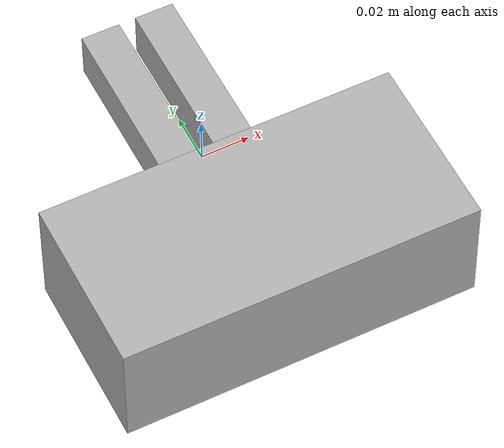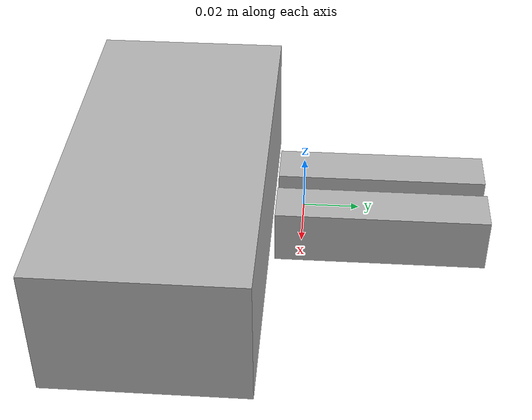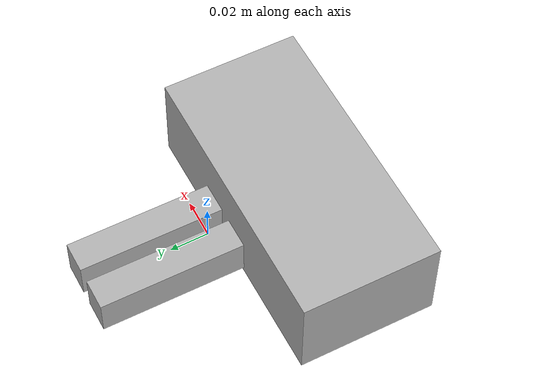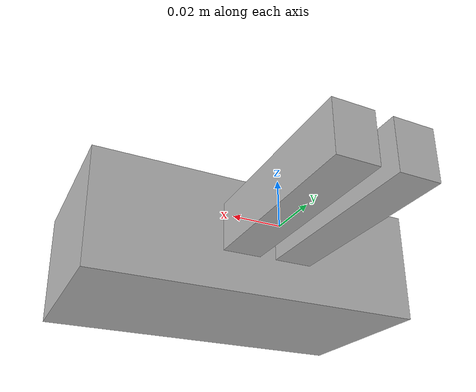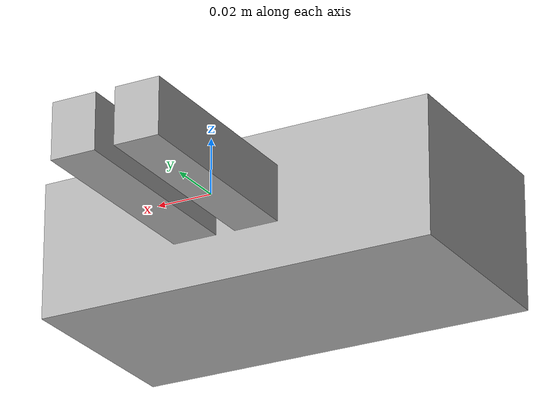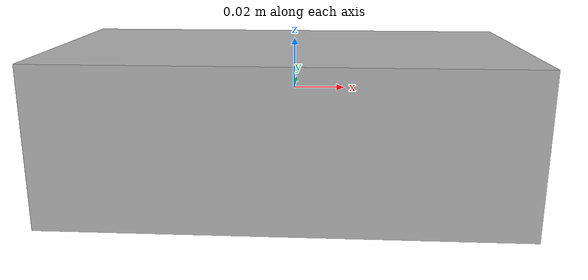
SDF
<?xml version="1.0"?>
<!-- This sdf file is based on schunk_wsg_50.sdf -->
<sdf version="1.7">
  <model name="Schunk_Gripper">
    <link name="body">
      <pose>0 -0.049133 0 0 0 0</pose>
      <inertial>
        <mass>0.988882</mass>
        <inertia>
          <ixx>0.162992</ixx>
          <ixy>0</ixy>
          <ixz>0</ixz>
          <iyy>0.162992</iyy>
          <iyz>0</iyz>
          <izz>0.164814</izz>
        </inertia>
      </inertial>
      <kinematic>0</kinematic>
      <visual name="visual">
        <geometry>
          <box>
            <size>0.146 0.0725 0.049521</size>
          </box>
        </geometry>
        <material>
          <ambient>0.3 0.3 0.3 1</ambient>
          <diffuse>0.7 0.7 0.7 1</diffuse>
          <specular>0.01 0.01 0.01 1</specular>
          <emissive>0 0 0 1</emissive>
        </material>
      </visual>
      <collision name="collision">
        <geometry>
          <box>
            <size>0.146 0.0725 0.05</size>
          </box>
        </geometry>
        <drake:proximity_properties>
          <drake:compliant_hydroelastic/>
          <drake:hydroelastic_modulus>1.0e6</drake:hydroelastic_modulus>
        </drake:proximity_properties>
      </collision>
    </link>
    <frame name="body_frame">
      <pose relative_to="body"/>
    </frame>
    <link name="left_finger">
      <pose>-0.0115 0.028 0 0 3.141592 0</pose>
      <inertial>
        <mass>0.05</mass>
        <inertia>
          <ixx>0.16</ixx>
          <ixy>0</ixy>
          <ixz>0</ixz>
          <iyy>0.16</iyy>
          <iyz>0</iyz>
          <izz>0.16</izz>
        </inertia>
      </inertial>
      <kinematic>0</kinematic>
      <visual name="visual">
        <geometry>
          <box>
            <size>0.016 0.075 0.02</size>
          </box>
        </geometry>
        <material>
          <ambient>0.3 0.3 0.3 1</ambient>
          <diffuse>0.7 0.7 0.7 1</diffuse>
          <specular>0.01 0.01 0.01 1</specular>
          <emissive>0 0 0 1</emissive>
        </material>
      </visual>
      <collision name="left_tip">
        <pose> -0.0075 0.031 0 0 0 0 </pose>
        <geometry>
          <box>
            <size>0.003 0.02 0.02</size>
          </box>
        </geometry>
        <drake:proximity_properties>
          <drake:compliant_hydroelastic/>
          <drake:mu_dynamic>50.0</drake:mu_dynamic>
          <drake:hydroelastic_modulus>1.0e5</drake:hydroelastic_modulus>
        </drake:proximity_properties>
      </collision>
      <collision name="collision">
        <geometry>
          <box>
            <size>0.012 0.082 0.02</size>
          </box>
        </geometry>
        <drake:proximity_properties>
          <drake:compliant_hydroelastic/>
          <drake:mu_dynamic>50.0</drake:mu_dynamic>
          <drake:hydroelastic_modulus>1.0e6</drake:hydroelastic_modulus>
        </drake:proximity_properties>
      </collision>
    </link>
    <link name="right_finger">
      <pose>0.0115 0.028 0 0 0 0</pose>
      <inertial>
        <mass>0.05</mass>
        <inertia>
          <ixx>0.16</ixx>
          <ixy>0</ixy>
          <ixz>0</ixz>
          <iyy>0.16</iyy>
          <iyz>0</iyz>
          <izz>0.16</izz>
        </inertia>
      </inertial>
      <kinematic>0</kinematic>
      <visual name="visual">
        <geometry>
          <box>
            <size>0.016 0.075 0.02</size>
          </box>
        </geometry>
        <material>
          <ambient>0.3 0.3 0.3 1</ambient>
          <diffuse>0.7 0.7 0.7 1</diffuse>
          <specular>0.01 0.01 0.01 1</specular>
          <emissive>0 0 0 1</emissive>
        </material>
      </visual>
      <collision name="right_tip">
        <pose> -0.0075 0.031 0 0 0 0 </pose>
        <geometry>
          <box>
            <size>0.003 0.02 0.02</size>
          </box>
        </geometry>
        <drake:proximity_properties>
          <drake:compliant_hydroelastic/>
          <drake:mu_dynamic>50.0</drake:mu_dynamic>
          <drake:hydroelastic_modulus>1.0e5</drake:hydroelastic_modulus>
        </drake:proximity_properties>
      </collision>
      <collision name="collision">
        <geometry>
          <box>
            <size>0.012 0.082 0.02</size>
          </box>
        </geometry>
        <drake:proximity_properties>
          <drake:compliant_hydroelastic/>
          <drake:mu_dynamic>50.0</drake:mu_dynamic>
          <drake:hydroelastic_modulus>1.0e6</drake:hydroelastic_modulus>
        </drake:proximity_properties>
      </collision>
    </link>
    <joint name="left_finger_sliding_joint" type="prismatic">
      <parent>body</parent>
      <child>left_finger</child>
      <axis>
        <xyz>-1 0 0</xyz>
        <!-- Drake attaches an actuator to all and only joints with a nonzero
             effort limit. -->
        <limit>
          <lower>-0.055</lower>
          <upper>0</upper>
          <effort>320</effort>
          <stiffness>15000</stiffness>
        </limit>
        <dynamics>
          <spring_reference>0</spring_reference>
          <spring_stiffness>0</spring_stiffness>
          <damping>0</damping>
          <friction>0</friction>
        </dynamics>
      </axis>
    </joint>
    <joint name="right_finger_sliding_joint" type="prismatic">
      <parent>body</parent>
      <child>right_finger</child>
      <axis>
        <xyz>1 0 0</xyz>
        <!-- Drake attaches an actuator to all and only joints with a nonzero
             effort limit. -->
        <limit>
          <lower>0</lower>
          <upper>0.055</upper>
          <effort>80</effort>
          <stiffness>15000</stiffness>
        </limit>
        <dynamics>
          <spring_reference>0</spring_reference>
          <spring_stiffness>0</spring_stiffness>
          <damping>0</damping>
          <friction>0</friction>
        </dynamics>
      </axis>
    </joint>
    <static>0</static>
  </model>
</sdf>
